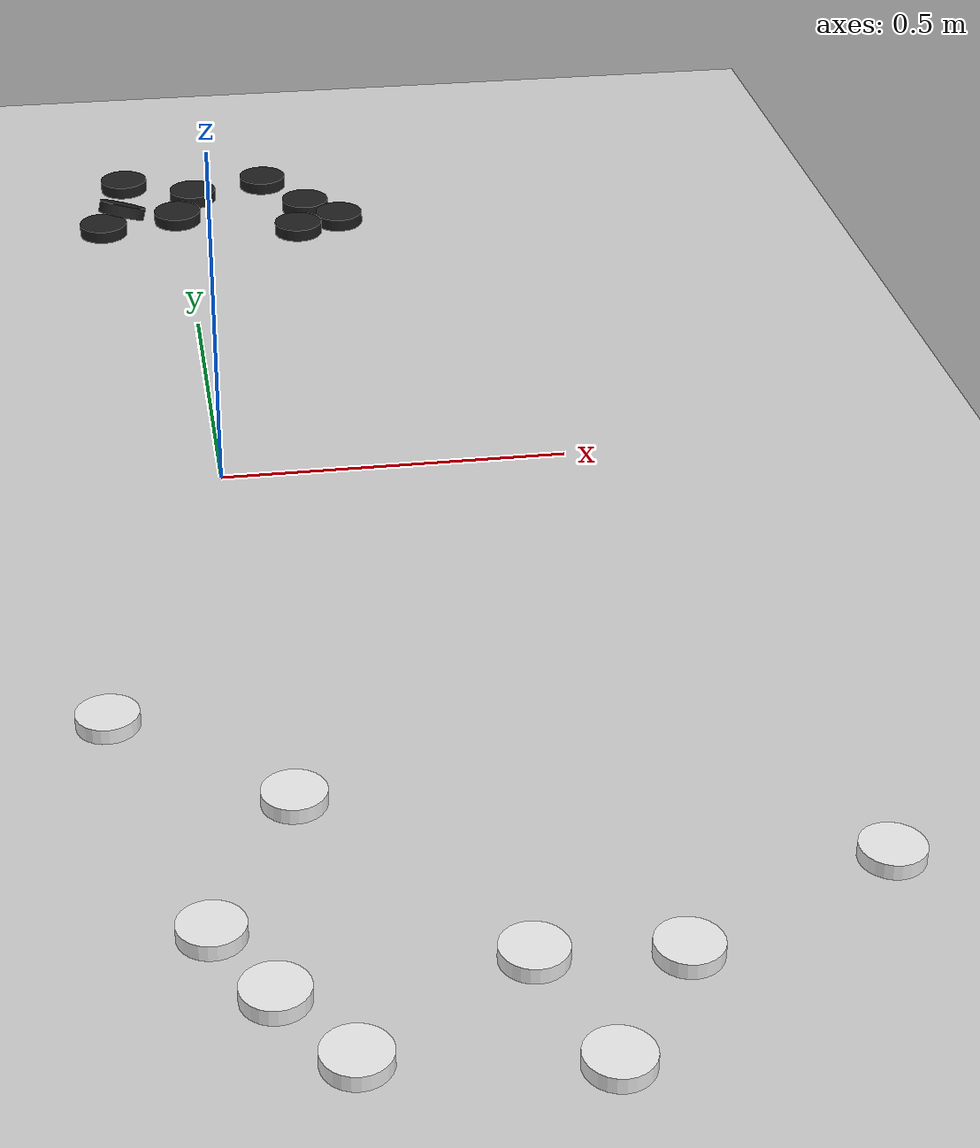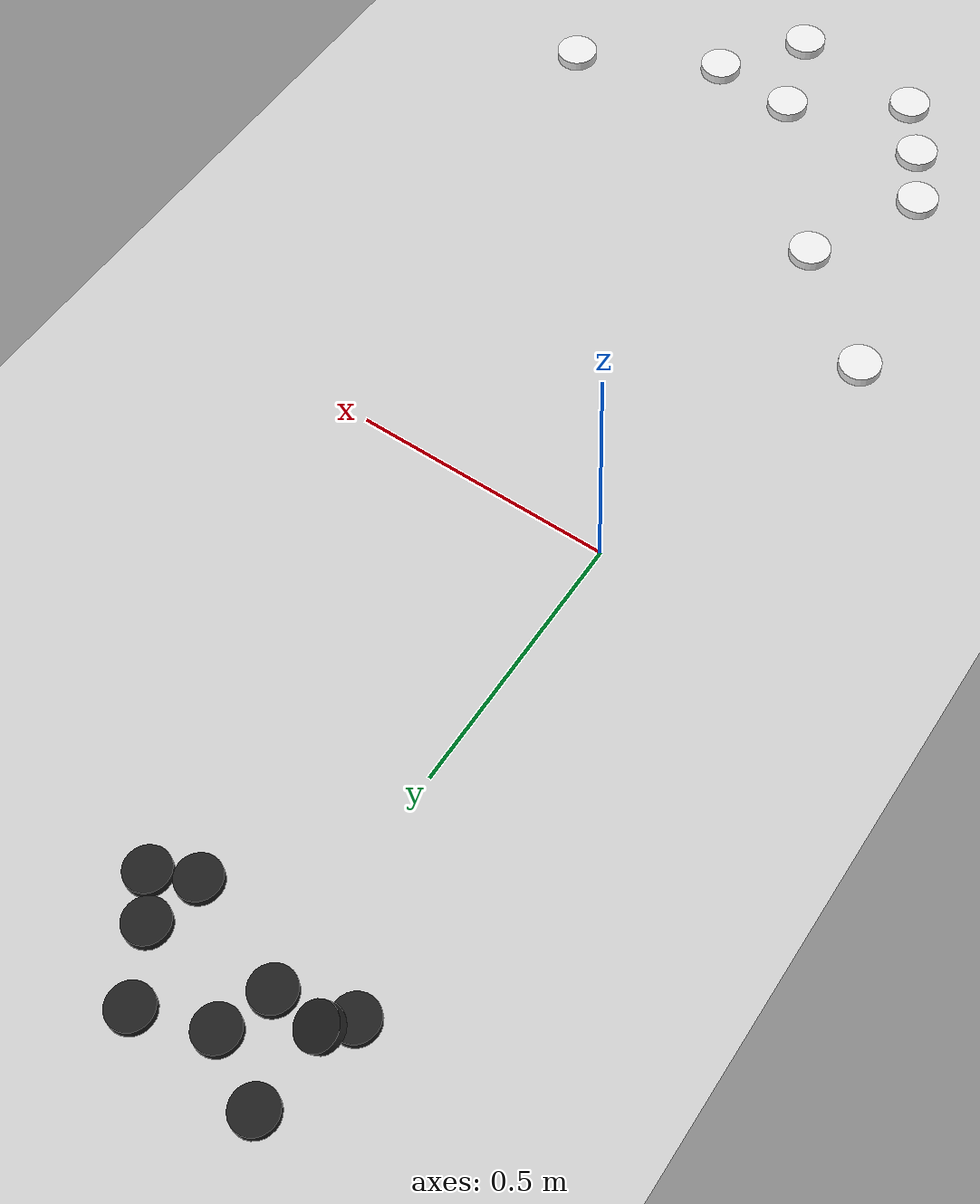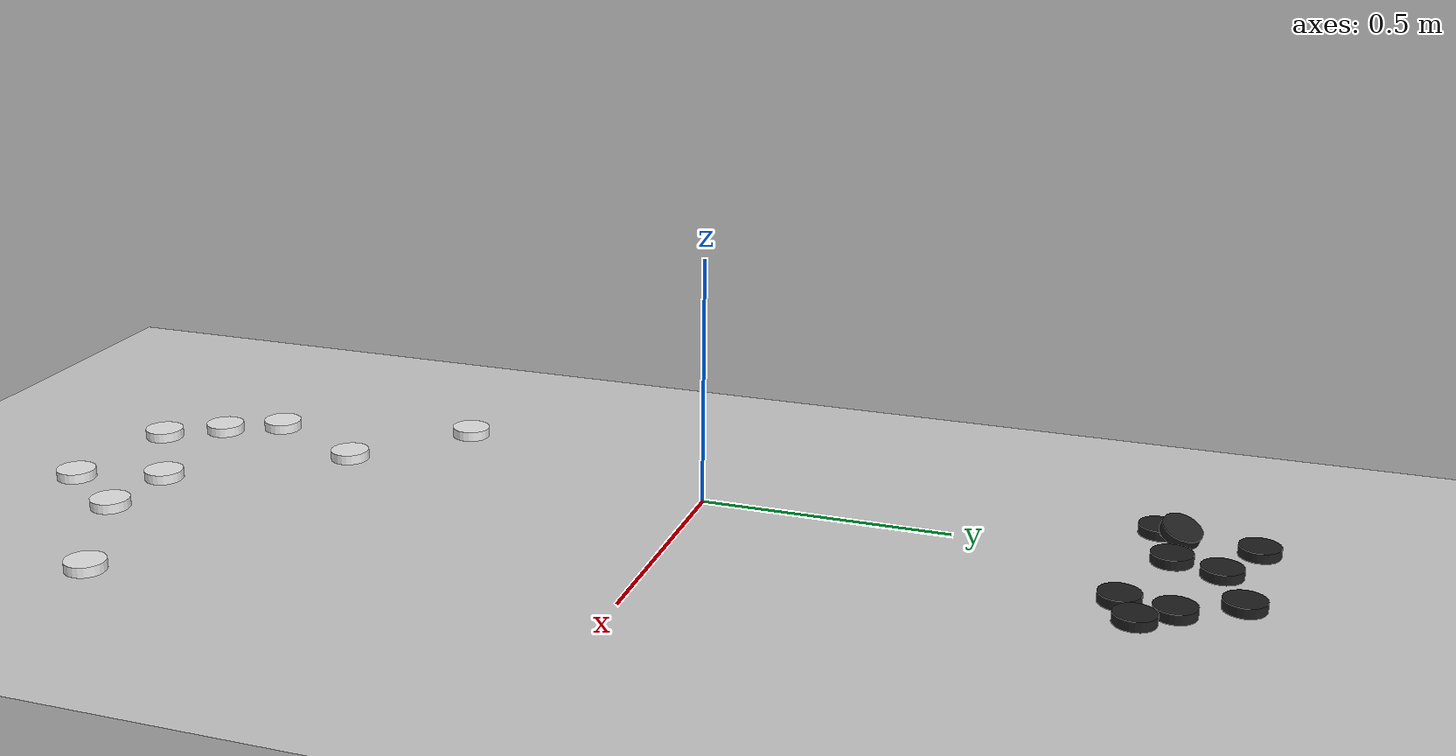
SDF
<sdf version="1.6">
 <world name="default">
  <light name="sun" type="directional">
   <pose>0 0 10 0 -0 0</pose>
   <diffuse>0.8 0.8 0.8 1</diffuse>
   <specular>0.2 0.2 0.2 1</specular>
   <attenuation>
    <range>1000</range>
    <constant>0.9</constant>
    <linear>0.01</linear>
    <quadratic>0.001</quadratic>
   </attenuation>
   <direction>-0.5 0.1 -0.9</direction>
  </light>
  <model name="ground_plane">
   <static>1</static>
   <link name="link">
    <collision name="collision">
     <geometry><plane><normal>0 0 1</normal><size>100 100</size></plane></geometry>
     <surface>
      <contact><collide_bitmask>65535</collide_bitmask></contact>
      <friction><ode><mu>100</mu><mu2>50</mu2></ode></friction>
     </surface>
    </collision>
    <visual name="visual">
     <cast_shadows>0</cast_shadows>
     <geometry><plane><normal>0 0 1</normal><size>100 100</size></plane></geometry>
     <material>
      <script><uri>file://media/materials/scripts/gazebo.material</uri><name>Gazebo/Grey</name></script>
     </material>
    </visual>
   </link>
  </model>
  <gravity>0 0 -9.8</gravity>
  <magnetic_field>6e-06 2.3e-05 -4.2e-05</magnetic_field>
  <atmosphere type="adiabatic"/>
  <physics name="default_physics" default="0" type="ode">
   <max_step_size>0.001</max_step_size>
   <real_time_factor>1</real_time_factor>
   <real_time_update_rate>1000</real_time_update_rate>
  </physics>
  <scene><ambient>0.4 0.4 0.4 1</ambient><background>0.7 0.7 0.7 1</background><shadows>1</shadows></scene>
  <audio><device>default</device></audio>
  <spherical_coordinates>
   <surface_model>EARTH_WGS84</surface_model>
   <latitude_deg>0</latitude_deg>
   <longitude_deg>0</longitude_deg>
   <elevation>0</elevation>
   <heading_deg>0</heading_deg>
  </spherical_coordinates>
  <model name="white_piece">
   <link name="link">
    <inertial>
     <mass>0.2</mass>
     <inertia>
      <ixx>8.667e-05</ixx>
      <ixy>0</ixy>
      <ixz>0</ixz>
      <iyy>8.667e-05</iyy>
      <iyz>0</iyz>
      <izz>0.00016</izz>
     </inertia>
    </inertial>
    <visual name="visual">
     <geometry><cylinder><radius>0.04</radius><length>0.02</length></cylinder></geometry>
     <material>
      <script><name>Gazebo/White</name><uri>file://media/materials/scripts/gazebo.material</uri></script>
      <shader type="vertex"><normal_map>__default__</normal_map></shader>
     </material>
    </visual>
    <collision name="collision">
     <geometry><cylinder><radius>0.04</radius><length>0.02</length></cylinder></geometry>
     <surface>
      <friction>
       <ode><mu>1</mu><mu2>1</mu2><fdir1>0 0 0</fdir1><slip1>0</slip1><slip2>0</slip2></ode>
       <torsional>
        <coefficient>1</coefficient>
        <patch_radius>0</patch_radius>
        <surface_radius>0</surface_radius>
        <use_patch_radius>1</use_patch_radius>
        <ode><slip>0</slip></ode>
       </torsional>
      </friction>
      <bounce><restitution_coefficient>0</restitution_coefficient><threshold>1e+06</threshold></bounce>
      <contact>
       <collide_without_contact>0</collide_without_contact>
       <collide_without_contact_bitmask>1</collide_without_contact_bitmask>
       <collide_bitmask>1</collide_bitmask>
       <ode>
        <soft_cfm>0</soft_cfm>
        <soft_erp>0.2</soft_erp>
        <kp>1e+13</kp>
        <kd>1</kd>
        <max_vel>1</max_vel>
        <min_depth>0</min_depth>
       </ode>
       <bullet>
        <split_impulse>1</split_impulse>
        <split_impulse_penetration_threshold>-0.01</split_impulse_penetration_threshold>
        <soft_cfm>0</soft_cfm>
        <soft_erp>0.2</soft_erp>
        <kp>1e+13</kp>
        <kd>1</kd>
       </bullet>
      </contact>
     </surface>
    </collision>
   </link>
   <static>0</static>
   <pose>-0.182573 -0.589737 0.010782 0.000551 -0.020377 -1.01845</pose>
  </model>
  <model name="white_piece_0">
   <link name="link">
    <inertial>
     <mass>0.2</mass>
     <inertia>
      <ixx>8.667e-05</ixx>
      <ixy>0</ixy>
      <ixz>0</ixz>
      <iyy>8.667e-05</iyy>
      <iyz>0</iyz>
      <izz>0.00016</izz>
     </inertia>
    </inertial>
    <visual name="visual">
     <geometry><cylinder><radius>0.04</radius><length>0.02</length></cylinder></geometry>
     <material>
      <script><name>Gazebo/White</name><uri>file://media/materials/scripts/gazebo.material</uri></script>
      <shader type="vertex"><normal_map>__default__</normal_map></shader>
     </material>
    </visual>
    <collision name="collision">
     <geometry><cylinder><radius>0.04</radius><length>0.02</length></cylinder></geometry>
     <surface>
      <friction>
       <ode><mu>1</mu><mu2>1</mu2><fdir1>0 0 0</fdir1><slip1>0</slip1><slip2>0</slip2></ode>
       <torsional>
        <coefficient>1</coefficient>
        <patch_radius>0</patch_radius>
        <surface_radius>0</surface_radius>
        <use_patch_radius>1</use_patch_radius>
        <ode><slip>0</slip></ode>
       </torsional>
      </friction>
      <bounce><restitution_coefficient>0</restitution_coefficient><threshold>1e+06</threshold></bounce>
      <contact>
       <collide_without_contact>0</collide_without_contact>
       <collide_without_contact_bitmask>1</collide_without_contact_bitmask>
       <collide_bitmask>1</collide_bitmask>
       <ode>
        <soft_cfm>0</soft_cfm>
        <soft_erp>0.2</soft_erp>
        <kp>1e+13</kp>
        <kd>1</kd>
        <max_vel>1</max_vel>
        <min_depth>0</min_depth>
       </ode>
       <bullet>
        <split_impulse>1</split_impulse>
        <split_impulse_penetration_threshold>-0.01</split_impulse_penetration_threshold>
        <soft_cfm>0</soft_cfm>
        <soft_erp>0.2</soft_erp>
        <kp>1e+13</kp>
        <kd>1</kd>
       </bullet>
      </contact>
     </surface>
    </collision>
   </link>
   <static>0</static>
   <pose>-0.025493 -1.11016 0.009993 -0.000165 -0.000165 0</pose>
  </model>
  <model name="white_piece_1">
   <link name="link">
    <inertial>
     <mass>0.2</mass>
     <inertia>
      <ixx>8.667e-05</ixx>
      <ixy>0</ixy>
      <ixz>0</ixz>
      <iyy>8.667e-05</iyy>
      <iyz>0</iyz>
      <izz>0.00016</izz>
     </inertia>
    </inertial>
    <visual name="visual">
     <geometry><cylinder><radius>0.04</radius><length>0.02</length></cylinder></geometry>
     <material>
      <script><name>Gazebo/White</name><uri>file://media/materials/scripts/gazebo.material</uri></script>
      <shader type="vertex"><normal_map>__default__</normal_map></shader>
     </material>
    </visual>
    <collision name="collision">
     <geometry><cylinder><radius>0.04</radius><length>0.02</length></cylinder></geometry>
     <surface>
      <friction>
       <ode><mu>1</mu><mu2>1</mu2><fdir1>0 0 0</fdir1><slip1>0</slip1><slip2>0</slip2></ode>
       <torsional>
        <coefficient>1</coefficient>
        <patch_radius>0</patch_radius>
        <surface_radius>0</surface_radius>
        <use_patch_radius>1</use_patch_radius>
        <ode><slip>0</slip></ode>
       </torsional>
      </friction>
      <bounce><restitution_coefficient>0</restitution_coefficient><threshold>1e+06</threshold></bounce>
      <contact>
       <collide_without_contact>0</collide_without_contact>
       <collide_without_contact_bitmask>1</collide_without_contact_bitmask>
       <collide_bitmask>1</collide_bitmask>
       <ode>
        <soft_cfm>0</soft_cfm>
        <soft_erp>0.2</soft_erp>
        <kp>1e+13</kp>
        <kd>1</kd>
        <max_vel>1</max_vel>
        <min_depth>0</min_depth>
       </ode>
       <bullet>
        <split_impulse>1</split_impulse>
        <split_impulse_penetration_threshold>-0.01</split_impulse_penetration_threshold>
        <soft_cfm>0</soft_cfm>
        <soft_erp>0.2</soft_erp>
        <kp>1e+13</kp>
        <kd>1</kd>
       </bullet>
      </contact>
     </surface>
    </collision>
   </link>
   <static>0</static>
   <pose>0.25501 -1.08484 0.009995 -7.9e-05 -7.9e-05 -8e-05</pose>
  </model>
  <model name="white_piece_1_clone">
   <link name="link">
    <inertial>
     <mass>0.2</mass>
     <inertia>
      <ixx>8.667e-05</ixx>
      <ixy>0</ixy>
      <ixz>0</ixz>
      <iyy>8.667e-05</iyy>
      <iyz>0</iyz>
      <izz>0.00016</izz>
     </inertia>
    </inertial>
    <visual name="visual">
     <geometry><cylinder><radius>0.04</radius><length>0.02</length></cylinder></geometry>
     <material>
      <script><name>Gazebo/White</name><uri>file://media/materials/scripts/gazebo.material</uri></script>
      <shader type="vertex"><normal_map>__default__</normal_map></shader>
     </material>
    </visual>
    <collision name="collision">
     <geometry><cylinder><radius>0.04</radius><length>0.02</length></cylinder></geometry>
     <surface>
      <friction>
       <ode><mu>1</mu><mu2>1</mu2><fdir1>0 0 0</fdir1><slip1>0</slip1><slip2>0</slip2></ode>
       <torsional>
        <coefficient>1</coefficient>
        <patch_radius>0</patch_radius>
        <surface_radius>0</surface_radius>
        <use_patch_radius>1</use_patch_radius>
        <ode><slip>0</slip></ode>
       </torsional>
      </friction>
      <bounce><restitution_coefficient>0</restitution_coefficient><threshold>1e+06</threshold></bounce>
      <contact>
       <collide_without_contact>0</collide_without_contact>
       <collide_without_contact_bitmask>1</collide_without_contact_bitmask>
       <collide_bitmask>1</collide_bitmask>
       <ode>
        <soft_cfm>0</soft_cfm>
        <soft_erp>0.2</soft_erp>
        <kp>1e+13</kp>
        <kd>1</kd>
        <max_vel>1</max_vel>
        <min_depth>0</min_depth>
       </ode>
       <bullet>
        <split_impulse>1</split_impulse>
        <split_impulse_penetration_threshold>-0.01</split_impulse_penetration_threshold>
        <soft_cfm>0</soft_cfm>
        <soft_erp>0.2</soft_erp>
        <kp>1e+13</kp>
        <kd>1</kd>
       </bullet>
      </contact>
     </surface>
    </collision>
   </link>
   <static>0</static>
   <pose>0.047493 -1.21783 0.009983 -5.1e-05 -0.000128 2.88637</pose>
  </model>
  <model name="white_piece_1_clone_0">
   <link name="link">
    <inertial>
     <mass>0.2</mass>
     <inertia>
      <ixx>8.667e-05</ixx>
      <ixy>0</ixy>
      <ixz>0</ixz>
      <iyy>8.667e-05</iyy>
      <iyz>0</iyz>
      <izz>0.00016</izz>
     </inertia>
    </inertial>
    <visual name="visual">
     <geometry><cylinder><radius>0.04</radius><length>0.02</length></cylinder></geometry>
     <material>
      <script><name>Gazebo/White</name><uri>file://media/materials/scripts/gazebo.material</uri></script>
      <shader type="vertex"><normal_map>__default__</normal_map></shader>
     </material>
    </visual>
    <collision name="collision">
     <geometry><cylinder><radius>0.04</radius><length>0.02</length></cylinder></geometry>
     <surface>
      <friction>
       <ode><mu>1</mu><mu2>1</mu2><fdir1>0 0 0</fdir1><slip1>0</slip1><slip2>0</slip2></ode>
       <torsional>
        <coefficient>1</coefficient>
        <patch_radius>0</patch_radius>
        <surface_radius>0</surface_radius>
        <use_patch_radius>1</use_patch_radius>
        <ode><slip>0</slip></ode>
       </torsional>
      </friction>
      <bounce><restitution_coefficient>0</restitution_coefficient><threshold>1e+06</threshold></bounce>
      <contact>
       <collide_without_contact>0</collide_without_contact>
       <collide_without_contact_bitmask>1</collide_without_contact_bitmask>
       <collide_bitmask>1</collide_bitmask>
       <ode>
        <soft_cfm>0</soft_cfm>
        <soft_erp>0.2</soft_erp>
        <kp>1e+13</kp>
        <kd>1</kd>
        <max_vel>1</max_vel>
        <min_depth>0</min_depth>
       </ode>
       <bullet>
        <split_impulse>1</split_impulse>
        <split_impulse_penetration_threshold>-0.01</split_impulse_penetration_threshold>
        <soft_cfm>0</soft_cfm>
        <soft_erp>0.2</soft_erp>
        <kp>1e+13</kp>
        <kd>1</kd>
       </bullet>
      </contact>
     </surface>
    </collision>
   </link>
   <static>0</static>
   <pose>-0.085035 -1.00081 0.010468 0.012117 -0.003149 2.9891</pose>
  </model>
  <model name="white_piece_1_clone_1">
   <link name="link">
    <inertial>
     <mass>0.2</mass>
     <inertia>
      <ixx>8.667e-05</ixx>
      <ixy>0</ixy>
      <ixz>0</ixz>
      <iyy>8.667e-05</iyy>
      <iyz>0</iyz>
      <izz>0.00016</izz>
     </inertia>
    </inertial>
    <visual name="visual">
     <geometry><cylinder><radius>0.04</radius><length>0.02</length></cylinder></geometry>
     <material>
      <script><name>Gazebo/White</name><uri>file://media/materials/scripts/gazebo.material</uri></script>
      <shader type="vertex"><normal_map>__default__</normal_map></shader>
     </material>
    </visual>
    <collision name="collision">
     <geometry><cylinder><radius>0.04</radius><length>0.02</length></cylinder></geometry>
     <surface>
      <friction>
       <ode><mu>1</mu><mu2>1</mu2><fdir1>0 0 0</fdir1><slip1>0</slip1><slip2>0</slip2></ode>
       <torsional>
        <coefficient>1</coefficient>
        <patch_radius>0</patch_radius>
        <surface_radius>0</surface_radius>
        <use_patch_radius>1</use_patch_radius>
        <ode><slip>0</slip></ode>
       </torsional>
      </friction>
      <bounce><restitution_coefficient>0</restitution_coefficient><threshold>1e+06</threshold></bounce>
      <contact>
       <collide_without_contact>0</collide_without_contact>
       <collide_without_contact_bitmask>1</collide_without_contact_bitmask>
       <collide_bitmask>1</collide_bitmask>
       <ode>
        <soft_cfm>0</soft_cfm>
        <soft_erp>0.2</soft_erp>
        <kp>1e+13</kp>
        <kd>1</kd>
        <max_vel>1</max_vel>
        <min_depth>0</min_depth>
       </ode>
       <bullet>
        <split_impulse>1</split_impulse>
        <split_impulse_penetration_threshold>-0.01</split_impulse_penetration_threshold>
        <soft_cfm>0</soft_cfm>
        <soft_erp>0.2</soft_erp>
        <kp>1e+13</kp>
        <kd>1</kd>
       </bullet>
      </contact>
     </surface>
    </collision>
   </link>
   <static>0</static>
   <pose>0.027701 -0.775547 0.01023 0.001133 -0.006464 1.09043</pose>
  </model>
  <model name="white_piece_1_clone_2">
   <link name="link">
    <inertial>
     <mass>0.2</mass>
     <inertia>
      <ixx>8.667e-05</ixx>
      <ixy>0</ixy>
      <ixz>0</ixz>
      <iyy>8.667e-05</iyy>
      <iyz>0</iyz>
      <izz>0.00016</izz>
     </inertia>
    </inertial>
    <visual name="visual">
     <geometry><cylinder><radius>0.04</radius><length>0.02</length></cylinder></geometry>
     <material>
      <script><name>Gazebo/White</name><uri>file://media/materials/scripts/gazebo.material</uri></script>
      <shader type="vertex"><normal_map>__default__</normal_map></shader>
     </material>
    </visual>
    <collision name="collision">
     <geometry><cylinder><radius>0.04</radius><length>0.02</length></cylinder></geometry>
     <surface>
      <friction>
       <ode><mu>1</mu><mu2>1</mu2><fdir1>0 0 0</fdir1><slip1>0</slip1><slip2>0</slip2></ode>
       <torsional>
        <coefficient>1</coefficient>
        <patch_radius>0</patch_radius>
        <surface_radius>0</surface_radius>
        <use_patch_radius>1</use_patch_radius>
        <ode><slip>0</slip></ode>
       </torsional>
      </friction>
      <bounce><restitution_coefficient>0</restitution_coefficient><threshold>1e+06</threshold></bounce>
      <contact>
       <collide_without_contact>0</collide_without_contact>
       <collide_without_contact_bitmask>1</collide_without_contact_bitmask>
       <collide_bitmask>1</collide_bitmask>
       <ode>
        <soft_cfm>0</soft_cfm>
        <soft_erp>0.2</soft_erp>
        <kp>1e+13</kp>
        <kd>1</kd>
        <max_vel>1</max_vel>
        <min_depth>0</min_depth>
       </ode>
       <bullet>
        <split_impulse>1</split_impulse>
        <split_impulse_penetration_threshold>-0.01</split_impulse_penetration_threshold>
        <soft_cfm>0</soft_cfm>
        <soft_erp>0.2</soft_erp>
        <kp>1e+13</kp>
        <kd>1</kd>
       </bullet>
      </contact>
     </surface>
    </collision>
   </link>
   <static>0</static>
   <pose>0.42156 -1.10099 0.009982 8e-05 7.9e-05 -7.7e-05</pose>
  </model>
  <model name="white_piece_1_clone_3">
   <link name="link">
    <inertial>
     <mass>0.2</mass>
     <inertia>
      <ixx>8.667e-05</ixx>
      <ixy>0</ixy>
      <ixz>0</ixz>
      <iyy>8.667e-05</iyy>
      <iyz>0</iyz>
      <izz>0.00016</izz>
     </inertia>
    </inertial>
    <visual name="visual">
     <geometry><cylinder><radius>0.04</radius><length>0.02</length></cylinder></geometry>
     <material>
      <script><name>Gazebo/White</name><uri>file://media/materials/scripts/gazebo.material</uri></script>
      <shader type="vertex"><normal_map>__default__</normal_map></shader>
     </material>
    </visual>
    <collision name="collision">
     <geometry><cylinder><radius>0.04</radius><length>0.02</length></cylinder></geometry>
     <surface>
      <friction>
       <ode><mu>1</mu><mu2>1</mu2><fdir1>0 0 0</fdir1><slip1>0</slip1><slip2>0</slip2></ode>
       <torsional>
        <coefficient>1</coefficient>
        <patch_radius>0</patch_radius>
        <surface_radius>0</surface_radius>
        <use_patch_radius>1</use_patch_radius>
        <ode><slip>0</slip></ode>
       </torsional>
      </friction>
      <bounce><restitution_coefficient>0</restitution_coefficient><threshold>1e+06</threshold></bounce>
      <contact>
       <collide_without_contact>0</collide_without_contact>
       <collide_without_contact_bitmask>1</collide_without_contact_bitmask>
       <collide_bitmask>1</collide_bitmask>
       <ode>
        <soft_cfm>0</soft_cfm>
        <soft_erp>0.2</soft_erp>
        <kp>1e+13</kp>
        <kd>1</kd>
        <max_vel>1</max_vel>
        <min_depth>0</min_depth>
       </ode>
       <bullet>
        <split_impulse>1</split_impulse>
        <split_impulse_penetration_threshold>-0.01</split_impulse_penetration_threshold>
        <soft_cfm>0</soft_cfm>
        <soft_erp>0.2</soft_erp>
        <kp>1e+13</kp>
        <kd>1</kd>
       </bullet>
      </contact>
     </surface>
    </collision>
   </link>
   <static>0</static>
   <pose>0.688217 -0.971559 0.009982 8e-05 7.9e-05 -7.5e-05</pose>
  </model>
  <model name="white_piece_1_clone_4">
   <link name="link">
    <inertial>
     <mass>0.2</mass>
     <inertia>
      <ixx>8.667e-05</ixx>
      <ixy>0</ixy>
      <ixz>0</ixz>
      <iyy>8.667e-05</iyy>
      <iyz>0</iyz>
      <izz>0.00016</izz>
     </inertia>
    </inertial>
    <visual name="visual">
     <geometry><cylinder><radius>0.04</radius><length>0.02</length></cylinder></geometry>
     <material>
      <script><name>Gazebo/White</name><uri>file://media/materials/scripts/gazebo.material</uri></script>
      <shader type="vertex"><normal_map>__default__</normal_map></shader>
     </material>
    </visual>
    <collision name="collision">
     <geometry><cylinder><radius>0.04</radius><length>0.02</length></cylinder></geometry>
     <surface>
      <friction>
       <ode><mu>1</mu><mu2>1</mu2><fdir1>0 0 0</fdir1><slip1>0</slip1><slip2>0</slip2></ode>
       <torsional>
        <coefficient>1</coefficient>
        <patch_radius>0</patch_radius>
        <surface_radius>0</surface_radius>
        <use_patch_radius>1</use_patch_radius>
        <ode><slip>0</slip></ode>
       </torsional>
      </friction>
      <bounce><restitution_coefficient>0</restitution_coefficient><threshold>1e+06</threshold></bounce>
      <contact>
       <collide_without_contact>0</collide_without_contact>
       <collide_without_contact_bitmask>1</collide_without_contact_bitmask>
       <collide_bitmask>1</collide_bitmask>
       <ode>
        <soft_cfm>0</soft_cfm>
        <soft_erp>0.2</soft_erp>
        <kp>1e+13</kp>
        <kd>1</kd>
        <max_vel>1</max_vel>
        <min_depth>0</min_depth>
       </ode>
       <bullet>
        <split_impulse>1</split_impulse>
        <split_impulse_penetration_threshold>-0.01</split_impulse_penetration_threshold>
        <soft_cfm>0</soft_cfm>
        <soft_erp>0.2</soft_erp>
        <kp>1e+13</kp>
        <kd>1</kd>
       </bullet>
      </contact>
     </surface>
    </collision>
   </link>
   <static>0</static>
   <pose>0.31147 -1.258 0.009982 8e-05 7.9e-05 -7.3e-05</pose>
  </model>
  <model name="black_piece">
   <link name="link">
    <inertial>
     <mass>0.2</mass>
     <inertia>
      <ixx>8.667e-05</ixx>
      <ixy>0</ixy>
      <ixz>0</ixz>
      <iyy>8.667e-05</iyy>
      <iyz>0</iyz>
      <izz>0.00016</izz>
     </inertia>
    </inertial>
    <visual name="visual">
     <geometry><cylinder><radius>0.04</radius><length>0.02</length></cylinder></geometry>
     <material>
      <script><name>Gazebo/Black</name><uri>file://media/materials/scripts/gazebo.material</uri></script>
      <shader type="vertex"><normal_map>__default__</normal_map></shader>
     </material>
    </visual>
    <collision name="collision">
     <geometry><cylinder><radius>0.04</radius><length>0.02</length></cylinder></geometry>
     <surface>
      <friction>
       <ode><mu>1</mu><mu2>1</mu2><fdir1>0 0 0</fdir1><slip1>0</slip1><slip2>0</slip2></ode>
       <torsional>
        <coefficient>1</coefficient>
        <patch_radius>0</patch_radius>
        <surface_radius>0</surface_radius>
        <use_patch_radius>1</use_patch_radius>
        <ode><slip>0</slip></ode>
       </torsional>
      </friction>
      <bounce><restitution_coefficient>0</restitution_coefficient><threshold>1e+06</threshold></bounce>
      <contact>
       <collide_without_contact>0</collide_without_contact>
       <collide_without_contact_bitmask>1</collide_without_contact_bitmask>
       <collide_bitmask>1</collide_bitmask>
       <ode>
        <soft_cfm>0</soft_cfm>
        <soft_erp>0.2</soft_erp>
        <kp>1e+13</kp>
        <kd>1</kd>
        <max_vel>1</max_vel>
        <min_depth>0</min_depth>
       </ode>
       <bullet>
        <split_impulse>1</split_impulse>
        <split_impulse_penetration_threshold>-0.01</split_impulse_penetration_threshold>
        <soft_cfm>0</soft_cfm>
        <soft_erp>0.2</soft_erp>
        <kp>1e+13</kp>
        <kd>1</kd>
       </bullet>
      </contact>
     </surface>
    </collision>
   </link>
   <static>0</static>
   <pose>-0.009538 0.908974 0.010523 -0.011952 -0.00708 2.13268</pose>
  </model>
  <model name="black_piece_clone">
   <link name="link">
    <inertial>
     <mass>0.2</mass>
     <inertia>
      <ixx>8.667e-05</ixx>
      <ixy>0</ixy>
      <ixz>0</ixz>
      <iyy>8.667e-05</iyy>
      <iyz>0</iyz>
      <izz>0.00016</izz>
     </inertia>
    </inertial>
    <visual name="visual">
     <geometry><cylinder><radius>0.04</radius><length>0.02</length></cylinder></geometry>
     <material>
      <script><name>Gazebo/Black</name><uri>file://media/materials/scripts/gazebo.material</uri></script>
      <shader type="vertex"><normal_map>__default__</normal_map></shader>
     </material>
    </visual>
    <collision name="collision">
     <geometry><cylinder><radius>0.04</radius><length>0.02</length></cylinder></geometry>
     <surface>
      <friction>
       <ode><mu>1</mu><mu2>1</mu2><fdir1>0 0 0</fdir1><slip1>0</slip1><slip2>0</slip2></ode>
       <torsional>
        <coefficient>1</coefficient>
        <patch_radius>0</patch_radius>
        <surface_radius>0</surface_radius>
        <use_patch_radius>1</use_patch_radius>
        <ode><slip>0</slip></ode>
       </torsional>
      </friction>
      <bounce><restitution_coefficient>0</restitution_coefficient><threshold>1e+06</threshold></bounce>
      <contact>
       <collide_without_contact>0</collide_without_contact>
       <collide_without_contact_bitmask>1</collide_without_contact_bitmask>
       <collide_bitmask>1</collide_bitmask>
       <ode>
        <soft_cfm>0</soft_cfm>
        <soft_erp>0.2</soft_erp>
        <kp>1e+13</kp>
        <kd>1</kd>
        <max_vel>1</max_vel>
        <min_depth>0</min_depth>
       </ode>
       <bullet>
        <split_impulse>1</split_impulse>
        <split_impulse_penetration_threshold>-0.01</split_impulse_penetration_threshold>
        <soft_cfm>0</soft_cfm>
        <soft_erp>0.2</soft_erp>
        <kp>1e+13</kp>
        <kd>1</kd>
       </bullet>
      </contact>
     </surface>
    </collision>
   </link>
   <static>0</static>
   <pose>0.269061 0.868262 0.010125 0.001218 -0.003742 -0.126627</pose>
  </model>
  <model name="black_piece_clone_0">
   <link name="link">
    <inertial>
     <mass>0.2</mass>
     <inertia>
      <ixx>8.667e-05</ixx>
      <ixy>0</ixy>
      <ixz>0</ixz>
      <iyy>8.667e-05</iyy>
      <iyz>0</iyz>
      <izz>0.00016</izz>
     </inertia>
    </inertial>
    <visual name="visual">
     <geometry><cylinder><radius>0.04</radius><length>0.02</length></cylinder></geometry>
     <material>
      <script><name>Gazebo/Black</name><uri>file://media/materials/scripts/gazebo.material</uri></script>
      <shader type="vertex"><normal_map>__default__</normal_map></shader>
     </material>
    </visual>
    <collision name="collision">
     <geometry><cylinder><radius>0.04</radius><length>0.02</length></cylinder></geometry>
     <surface>
      <friction>
       <ode><mu>1</mu><mu2>1</mu2><fdir1>0 0 0</fdir1><slip1>0</slip1><slip2>0</slip2></ode>
       <torsional>
        <coefficient>1</coefficient>
        <patch_radius>0</patch_radius>
        <surface_radius>0</surface_radius>
        <use_patch_radius>1</use_patch_radius>
        <ode><slip>0</slip></ode>
       </torsional>
      </friction>
      <bounce><restitution_coefficient>0</restitution_coefficient><threshold>1e+06</threshold></bounce>
      <contact>
       <collide_without_contact>0</collide_without_contact>
       <collide_without_contact_bitmask>1</collide_without_contact_bitmask>
       <collide_bitmask>1</collide_bitmask>
       <ode>
        <soft_cfm>0</soft_cfm>
        <soft_erp>0.2</soft_erp>
        <kp>1e+13</kp>
        <kd>1</kd>
        <max_vel>1</max_vel>
        <min_depth>0</min_depth>
       </ode>
       <bullet>
        <split_impulse>1</split_impulse>
        <split_impulse_penetration_threshold>-0.01</split_impulse_penetration_threshold>
        <soft_cfm>0</soft_cfm>
        <soft_erp>0.2</soft_erp>
        <kp>1e+13</kp>
        <kd>1</kd>
       </bullet>
      </contact>
     </surface>
    </collision>
   </link>
   <static>0</static>
   <pose>-0.138775 0.875198 0.009977 -3.1415 0.000193 1.2506</pose>
  </model>
  <model name="black_piece_clone_1">
   <link name="link">
    <inertial>
     <mass>0.2</mass>
     <inertia>
      <ixx>8.667e-05</ixx>
      <ixy>0</ixy>
      <ixz>0</ixz>
      <iyy>8.667e-05</iyy>
      <iyz>0</iyz>
      <izz>0.00016</izz>
     </inertia>
    </inertial>
    <visual name="visual">
     <geometry><cylinder><radius>0.04</radius><length>0.02</length></cylinder></geometry>
     <material>
      <script><name>Gazebo/Black</name><uri>file://media/materials/scripts/gazebo.material</uri></script>
      <shader type="vertex"><normal_map>__default__</normal_map></shader>
     </material>
    </visual>
    <collision name="collision">
     <geometry><cylinder><radius>0.04</radius><length>0.02</length></cylinder></geometry>
     <surface>
      <friction>
       <ode><mu>1</mu><mu2>1</mu2><fdir1>0 0 0</fdir1><slip1>0</slip1><slip2>0</slip2></ode>
       <torsional>
        <coefficient>1</coefficient>
        <patch_radius>0</patch_radius>
        <surface_radius>0</surface_radius>
        <use_patch_radius>1</use_patch_radius>
        <ode><slip>0</slip></ode>
       </torsional>
      </friction>
      <bounce><restitution_coefficient>0</restitution_coefficient><threshold>1e+06</threshold></bounce>
      <contact>
       <collide_without_contact>0</collide_without_contact>
       <collide_without_contact_bitmask>1</collide_without_contact_bitmask>
       <collide_bitmask>1</collide_bitmask>
       <ode>
        <soft_cfm>0</soft_cfm>
        <soft_erp>0.2</soft_erp>
        <kp>1e+13</kp>
        <kd>1</kd>
        <max_vel>1</max_vel>
        <min_depth>0</min_depth>
       </ode>
       <bullet>
        <split_impulse>1</split_impulse>
        <split_impulse_penetration_threshold>-0.01</split_impulse_penetration_threshold>
        <soft_cfm>0</soft_cfm>
        <soft_erp>0.2</soft_erp>
        <kp>1e+13</kp>
        <kd>1</kd>
       </bullet>
      </contact>
     </surface>
    </collision>
   </link>
   <static>0</static>
   <pose>0.216325 0.932304 0.010178 0.005103 0.001276 0.348327</pose>
  </model>
  <model name="black_piece_clone_2">
   <link name="link">
    <inertial>
     <mass>0.2</mass>
     <inertia>
      <ixx>8.667e-05</ixx>
      <ixy>0</ixy>
      <ixz>0</ixz>
      <iyy>8.667e-05</iyy>
      <iyz>0</iyz>
      <izz>0.00016</izz>
     </inertia>
    </inertial>
    <visual name="visual">
     <geometry><cylinder><radius>0.04</radius><length>0.02</length></cylinder></geometry>
     <material>
      <script><name>Gazebo/Black</name><uri>file://media/materials/scripts/gazebo.material</uri></script>
      <shader type="vertex"><normal_map>__default__</normal_map></shader>
     </material>
    </visual>
    <collision name="collision">
     <geometry><cylinder><radius>0.04</radius><length>0.02</length></cylinder></geometry>
     <surface>
      <friction>
       <ode><mu>1</mu><mu2>1</mu2><fdir1>0 0 0</fdir1><slip1>0</slip1><slip2>0</slip2></ode>
       <torsional>
        <coefficient>1</coefficient>
        <patch_radius>0</patch_radius>
        <surface_radius>0</surface_radius>
        <use_patch_radius>1</use_patch_radius>
        <ode><slip>0</slip></ode>
       </torsional>
      </friction>
      <bounce><restitution_coefficient>0</restitution_coefficient><threshold>1e+06</threshold></bounce>
      <contact>
       <collide_without_contact>0</collide_without_contact>
       <collide_without_contact_bitmask>1</collide_without_contact_bitmask>
       <collide_bitmask>1</collide_bitmask>
       <ode>
        <soft_cfm>0</soft_cfm>
        <soft_erp>0.2</soft_erp>
        <kp>1e+13</kp>
        <kd>1</kd>
        <max_vel>1</max_vel>
        <min_depth>0</min_depth>
       </ode>
       <bullet>
        <split_impulse>1</split_impulse>
        <split_impulse_penetration_threshold>-0.01</split_impulse_penetration_threshold>
        <soft_cfm>0</soft_cfm>
        <soft_erp>0.2</soft_erp>
        <kp>1e+13</kp>
        <kd>1</kd>
       </bullet>
      </contact>
     </surface>
    </collision>
   </link>
   <static>0</static>
   <pose>0.194482 0.834867 0.010211 0.005988 -0.001168 2.63116</pose>
  </model>
  <model name="black_piece_clone_3">
   <link name="link">
    <inertial>
     <mass>0.2</mass>
     <inertia>
      <ixx>8.667e-05</ixx>
      <ixy>0</ixy>
      <ixz>0</ixz>
      <iyy>8.667e-05</iyy>
      <iyz>0</iyz>
      <izz>0.00016</izz>
     </inertia>
    </inertial>
    <visual name="visual">
     <geometry><cylinder><radius>0.04</radius><length>0.02</length></cylinder></geometry>
     <material>
      <script><name>Gazebo/Black</name><uri>file://media/materials/scripts/gazebo.material</uri></script>
      <shader type="vertex"><normal_map>__default__</normal_map></shader>
     </material>
    </visual>
    <collision name="collision">
     <geometry><cylinder><radius>0.04</radius><length>0.02</length></cylinder></geometry>
     <surface>
      <friction>
       <ode><mu>1</mu><mu2>1</mu2><fdir1>0 0 0</fdir1><slip1>0</slip1><slip2>0</slip2></ode>
       <torsional>
        <coefficient>1</coefficient>
        <patch_radius>0</patch_radius>
        <surface_radius>0</surface_radius>
        <use_patch_radius>1</use_patch_radius>
        <ode><slip>0</slip></ode>
       </torsional>
      </friction>
      <bounce><restitution_coefficient>0</restitution_coefficient><threshold>1e+06</threshold></bounce>
      <contact>
       <collide_without_contact>0</collide_without_contact>
       <collide_without_contact_bitmask>1</collide_without_contact_bitmask>
       <collide_bitmask>1</collide_bitmask>
       <ode>
        <soft_cfm>0</soft_cfm>
        <soft_erp>0.2</soft_erp>
        <kp>1e+13</kp>
        <kd>1</kd>
        <max_vel>1</max_vel>
        <min_depth>0</min_depth>
       </ode>
       <bullet>
        <split_impulse>1</split_impulse>
        <split_impulse_penetration_threshold>-0.01</split_impulse_penetration_threshold>
        <soft_cfm>0</soft_cfm>
        <soft_erp>0.2</soft_erp>
        <kp>1e+13</kp>
        <kd>1</kd>
       </bullet>
      </contact>
     </surface>
    </collision>
   </link>
   <static>0</static>
   <pose>0.022876 1.00056 0.009987 -9e-05 -0.000308 -0.014246</pose>
  </model>
  <model name="black_piece_clone_4">
   <link name="link">
    <inertial>
     <mass>0.2</mass>
     <inertia>
      <ixx>8.667e-05</ixx>
      <ixy>0</ixy>
      <ixz>0</ixz>
      <iyy>8.667e-05</iyy>
      <iyz>0</iyz>
      <izz>0.00016</izz>
     </inertia>
    </inertial>
    <visual name="visual">
     <geometry><cylinder><radius>0.04</radius><length>0.02</length></cylinder></geometry>
     <material>
      <script><name>Gazebo/Black</name><uri>file://media/materials/scripts/gazebo.material</uri></script>
      <shader type="vertex"><normal_map>__default__</normal_map></shader>
     </material>
    </visual>
    <collision name="collision">
     <geometry><cylinder><radius>0.04</radius><length>0.02</length></cylinder></geometry>
     <surface>
      <friction>
       <ode><mu>1</mu><mu2>1</mu2><fdir1>0 0 0</fdir1><slip1>0</slip1><slip2>0</slip2></ode>
       <torsional>
        <coefficient>1</coefficient>
        <patch_radius>0</patch_radius>
        <surface_radius>0</surface_radius>
        <use_patch_radius>1</use_patch_radius>
        <ode><slip>0</slip></ode>
       </torsional>
      </friction>
      <bounce><restitution_coefficient>0</restitution_coefficient><threshold>1e+06</threshold></bounce>
      <contact>
       <collide_without_contact>0</collide_without_contact>
       <collide_without_contact_bitmask>1</collide_without_contact_bitmask>
       <collide_bitmask>1</collide_bitmask>
       <ode>
        <soft_cfm>0</soft_cfm>
        <soft_erp>0.2</soft_erp>
        <kp>1e+13</kp>
        <kd>1</kd>
        <max_vel>1</max_vel>
        <min_depth>0</min_depth>
       </ode>
       <bullet>
        <split_impulse>1</split_impulse>
        <split_impulse_penetration_threshold>-0.01</split_impulse_penetration_threshold>
        <soft_cfm>0</soft_cfm>
        <soft_erp>0.2</soft_erp>
        <kp>1e+13</kp>
        <kd>1</kd>
       </bullet>
      </contact>
     </surface>
    </collision>
   </link>
   <static>0</static>
   <pose>0.150831 1.04573 0.009984 1.1e-05 -6.3e-05 -0.266189</pose>
  </model>
  <model name="black_piece_clone_5">
   <link name="link">
    <inertial>
     <mass>0.2</mass>
     <inertia>
      <ixx>8.667e-05</ixx>
      <ixy>0</ixy>
      <ixz>0</ixz>
      <iyy>8.667e-05</iyy>
      <iyz>0</iyz>
      <izz>0.00016</izz>
     </inertia>
    </inertial>
    <visual name="visual">
     <geometry><cylinder><radius>0.04</radius><length>0.02</length></cylinder></geometry>
     <material>
      <script><name>Gazebo/Black</name><uri>file://media/materials/scripts/gazebo.material</uri></script>
      <shader type="vertex"><normal_map>__default__</normal_map></shader>
     </material>
    </visual>
    <collision name="collision">
     <geometry><cylinder><radius>0.04</radius><length>0.02</length></cylinder></geometry>
     <surface>
      <friction>
       <ode><mu>1</mu><mu2>1</mu2><fdir1>0 0 0</fdir1><slip1>0</slip1><slip2>0</slip2></ode>
       <torsional>
        <coefficient>1</coefficient>
        <patch_radius>0</patch_radius>
        <surface_radius>0</surface_radius>
        <use_patch_radius>1</use_patch_radius>
        <ode><slip>0</slip></ode>
       </torsional>
      </friction>
      <bounce><restitution_coefficient>0</restitution_coefficient><threshold>1e+06</threshold></bounce>
      <contact>
       <collide_without_contact>0</collide_without_contact>
       <collide_without_contact_bitmask>1</collide_without_contact_bitmask>
       <collide_bitmask>1</collide_bitmask>
       <ode>
        <soft_cfm>0</soft_cfm>
        <soft_erp>0.2</soft_erp>
        <kp>1e+13</kp>
        <kd>1</kd>
        <max_vel>1</max_vel>
        <min_depth>0</min_depth>
       </ode>
       <bullet>
        <split_impulse>1</split_impulse>
        <split_impulse_penetration_threshold>-0.01</split_impulse_penetration_threshold>
        <soft_cfm>0</soft_cfm>
        <soft_erp>0.2</soft_erp>
        <kp>1e+13</kp>
        <kd>1</kd>
       </bullet>
      </contact>
     </surface>
    </collision>
   </link>
   <static>0</static>
   <pose>-0.104533 0.916566 0.024956 0.088086 0.396309 1.10462</pose>
  </model>
  <model name="black_piece_clone_6">
   <link name="link">
    <inertial>
     <mass>0.2</mass>
     <inertia>
      <ixx>8.667e-05</ixx>
      <ixy>0</ixy>
      <ixz>0</ixz>
      <iyy>8.667e-05</iyy>
      <iyz>0</iyz>
      <izz>0.00016</izz>
     </inertia>
    </inertial>
    <visual name="visual">
     <geometry><cylinder><radius>0.04</radius><length>0.02</length></cylinder></geometry>
     <material>
      <script><name>Gazebo/Black</name><uri>file://media/materials/scripts/gazebo.material</uri></script>
      <shader type="vertex"><normal_map>__default__</normal_map></shader>
     </material>
    </visual>
    <collision name="collision">
     <geometry><cylinder><radius>0.04</radius><length>0.02</length></cylinder></geometry>
     <surface>
      <friction>
       <ode><mu>1</mu><mu2>1</mu2><fdir1>0 0 0</fdir1><slip1>0</slip1><slip2>0</slip2></ode>
       <torsional>
        <coefficient>1</coefficient>
        <patch_radius>0</patch_radius>
        <surface_radius>0</surface_radius>
        <use_patch_radius>1</use_patch_radius>
        <ode><slip>0</slip></ode>
       </torsional>
      </friction>
      <bounce><restitution_coefficient>0</restitution_coefficient><threshold>1e+06</threshold></bounce>
      <contact>
       <collide_without_contact>0</collide_without_contact>
       <collide_without_contact_bitmask>1</collide_without_contact_bitmask>
       <collide_bitmask>1</collide_bitmask>
       <ode>
        <soft_cfm>0</soft_cfm>
        <soft_erp>0.2</soft_erp>
        <kp>1e+13</kp>
        <kd>1</kd>
        <max_vel>1</max_vel>
        <min_depth>0</min_depth>
       </ode>
       <bullet>
        <split_impulse>1</split_impulse>
        <split_impulse_penetration_threshold>-0.01</split_impulse_penetration_threshold>
        <soft_cfm>0</soft_cfm>
        <soft_erp>0.2</soft_erp>
        <kp>1e+13</kp>
        <kd>1</kd>
       </bullet>
      </contact>
     </surface>
    </collision>
   </link>
   <static>0</static>
   <pose>-0.09667 1.06145 0.00999 0.00028 -0.000183 -0.056442</pose>
  </model>
 </world>
</sdf>
